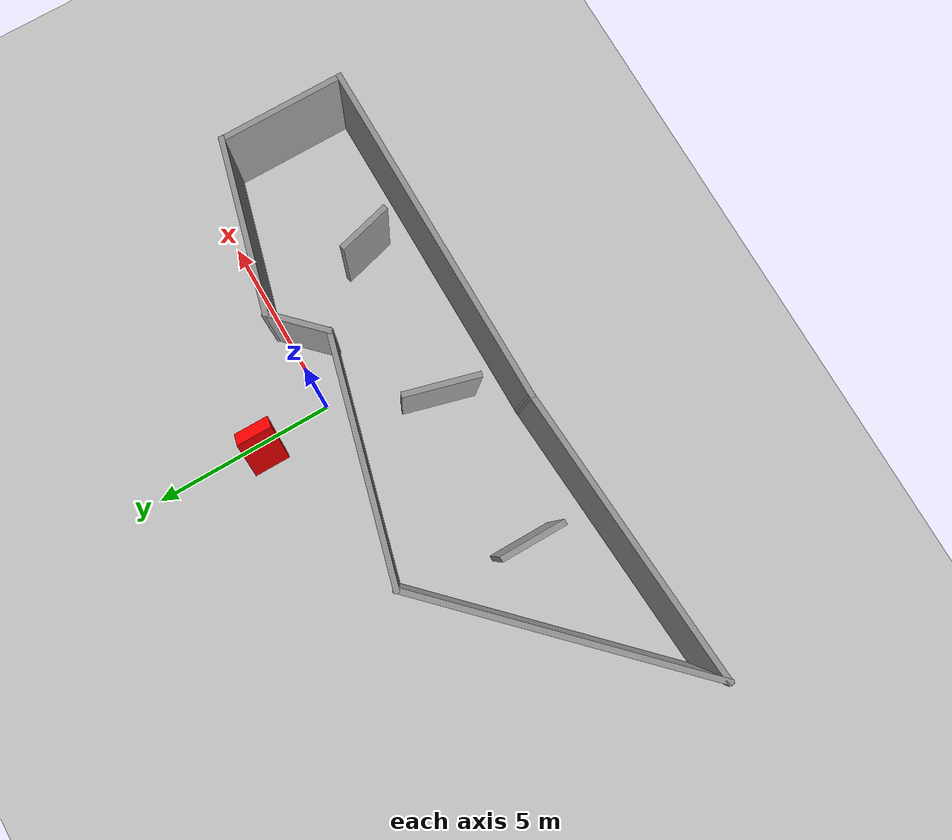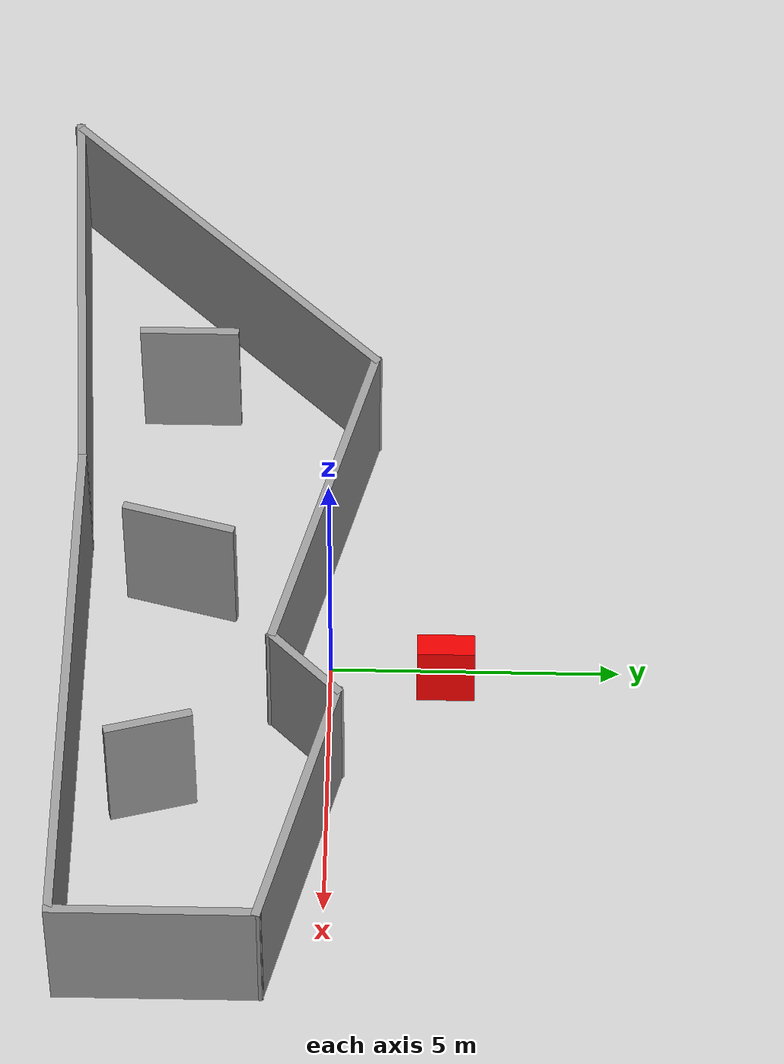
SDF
<?xml version="1.0" ?>
<sdf version="1.7">
  <world name="test_world">

    <!-- Raum als statisches SDF-Modell -->

    <!-- Ground Plane -->
    <include>
      <uri>model://ground_plane</uri>
    </include>

    <!-- Test-Box in der Mitte -->
    <model name="test_box">
      <pose>0 2 0 0 1 0</pose>
      <static>true</static>
      <link name="link">
        <visual name="visual">
          <geometry>
            <box><size>1 1 1</size></box>
          </geometry>
          <material>
            <ambient>1 0 0 1</ambient>
          </material>
        </visual>
      </link>
    </model>

    <!-- Labyrinth -->
    <model name="labyrinth">
    <pose>-1.91663 -2.0827 0 0 -0 0</pose>
    <link name="Wall_0">
      <collision name="Wall_0_Collision">
        <geometry>
          <box>
            <size>9.5 0.15 2.5</size>
          </box>
        </geometry>
        <pose>0 0 1.25 0 -0 0</pose>
      </collision>
      <visual name='Wall_0_Visual'>
        <pose>0 0 1.25 0 -0 0</pose>
        <geometry>
          <box>
            <size>9.5 0.15 2.5</size>
          </box>
        </geometry>
        <material>
          <script>
            <uri>file://media/materials/scripts/gazebo.material</uri>
            <name>Gazebo/Grey</name>
          </script>
          <ambient>1 1 1 1</ambient>
        </material>
        <meta>
          <layer>0</layer>
        </meta>
      </visual>
      <pose>3.96163 -2.2773 0 0 -0 0</pose>
    </link>
    <link name='Wall_1'>
      <collision name='Wall_1_Collision'>
        <geometry>
          <box>
            <size>3.5 0.15 2.5</size>
          </box>
        </geometry>
        <pose>0 0 1.25 0 -0 0</pose>
      </collision>
      <visual name='Wall_1_Visual'>
        <pose>0 0 1.25 0 -0 0</pose>
        <geometry>
          <box>
            <size>3.5 0.15 2.5</size>
          </box>
        </geometry>
        <material>
          <script>
            <uri>file://media/materials/scripts/gazebo.material</uri>
            <name>Gazebo/Grey</name>
          </script>
          <ambient>1 1 1 1</ambient>
        </material>
        <meta>
          <layer>0</layer>
        </meta>
      </visual>
      <pose>8.63663 -0.602304 0 0 -0 1.5708</pose>
    </link>
    <link name='Wall_10'>
      <collision name='Wall_10_Collision'>
        <geometry>
          <box>
            <size>1.5 0.15 2.5</size>
          </box>
        </geometry>
        <pose>0 0 1.25 0 -0 0</pose>
      </collision>
      <visual name='Wall_10_Visual'>
        <pose>0 0 1.25 0 -0 0</pose>
        <geometry>
          <box>
            <size>1.5 0.15 2.5</size>
          </box>
        </geometry>
        <material>
          <script>
            <uri>file://media/materials/scripts/gazebo.material</uri>
            <name>Gazebo/Grey</name>
          </script>
          <ambient>1 1 1 1</ambient>
        </material>
        <meta>
          <layer>0</layer>
        </meta>
      </visual>
      <pose>4.89322 -0.860973 0 0 -0 -1.309</pose>
    </link>
    <link name='Wall_12'>
      <collision name='Wall_12_Collision'>
        <geometry>
          <box>
            <size>2 0.15 2.5</size>
          </box>
        </geometry>
        <pose>0 0 1.25 0 -0 0</pose>
      </collision>
      <visual name='Wall_12_Visual'>
        <pose>0 0 1.25 0 -0 0</pose>
        <geometry>
          <box>
            <size>2 0.15 2.5</size>
          </box>
        </geometry>
        <material>
          <script>
            <uri>file://media/materials/scripts/gazebo.material</uri>
            <name>Gazebo/Grey</name>
          </script>
          <ambient>1 1 1 1</ambient>
        </material>
        <meta>
          <layer>0</layer>
        </meta>
      </visual>
      <pose>0.570034 -0.54732 0 0 -0 -1.8326</pose>
    </link>
    <link name='Wall_2'>
      <collision name='Wall_2_Collision'>
        <geometry>
          <box>
            <size>4.75 0.15 2.5</size>
          </box>
        </geometry>
        <pose>0 0 1.25 0 -0 0</pose>
      </collision>
      <visual name='Wall_2_Visual'>
        <pose>0 0 1.25 0 -0 0</pose>
        <geometry>
          <box>
            <size>4.75 0.15 2.5</size>
          </box>
        </geometry>
        <material>
          <script>
            <uri>file://media/materials/scripts/gazebo.material</uri>
            <name>Gazebo/Grey</name>
          </script>
          <ambient>1 1 1 1</ambient>
        </material>
        <meta>
          <layer>0</layer>
        </meta>
      </visual>
      <pose>6.415 1.66798 0 0 -0 2.87979</pose>
    </link>
    <link name='Wall_3'>
      <collision name='Wall_3_Collision'>
        <geometry>
          <box>
            <size>1.75 0.15 2.5</size>
          </box>
        </geometry>
        <pose>0 0 1.25 0 -0 0</pose>
      </collision>
      <visual name='Wall_3_Visual'>
        <pose>0 0 1.25 0 -0 0</pose>
        <geometry>
          <box>
            <size>1.75 0.15 2.5</size>
          </box>
        </geometry>
        <material>
          <script>
            <uri>file://media/materials/scripts/gazebo.material</uri>
            <name>Gazebo/Grey</name>
          </script>
          <ambient>1 1 1 1</ambient>
        </material>
        <meta>
          <layer>0</layer>
        </meta>
      </visual>
      <pose>3.62769 1.69758 0 0 -0 -2.35619</pose>
    </link>
    <link name='Wall_4'>
      <collision name='Wall_4_Collision'>
        <geometry>
          <box>
            <size>6.5 0.15 2.5</size>
          </box>
        </geometry>
        <pose>0 0 1.25 0 -0 0</pose>
      </collision>
      <visual name='Wall_4_Visual'>
        <pose>0 0 1.25 0 -0 0</pose>
        <geometry>
          <box>
            <size>6.5 0.15 2.5</size>
          </box>
        </geometry>
        <material>
          <script>
            <uri>file://media/materials/scripts/gazebo.material</uri>
            <name>Gazebo/Grey</name>
          </script>
          <ambient>1 1 1 1</ambient>
        </material>
        <meta>
          <layer>0</layer>
        </meta>
      </visual>
      <pose>-0.004815 1.95364 0 0 -0 2.87979</pose>
    </link>
    <link name='Wall_5'>
      <collision name='Wall_5_Collision'>
        <geometry>
          <box>
            <size>8 0.15 2.5</size>
          </box>
        </geometry>
        <pose>0 0 1.25 0 -0 0</pose>
      </collision>
      <visual name='Wall_5_Visual'>
        <pose>0 0 1.25 0 -0 0</pose>
        <geometry>
          <box>
            <size>8 0.15 2.5</size>
          </box>
        </geometry>
        <material>
          <script>
            <uri>file://media/materials/scripts/gazebo.material</uri>
            <name>Gazebo/Grey</name>
          </script>
          <ambient>1 1 1 1</ambient>
        </material>
        <meta>
          <layer>0</layer>
        </meta>
      </visual>
      <pose>-5.84702 -0 0 0 -0 -2.35619</pose>
    </link>
    <link name='Wall_6'>
      <collision name='Wall_6_Collision'>
        <geometry>
          <box>
            <size>8.07472 0.15 2.5</size>
          </box>
        </geometry>
        <pose>0 0 1.25 0 -0 0</pose>
      </collision>
      <visual name='Wall_6_Visual'>
        <pose>0 0 1.25 0 -0 0</pose>
        <geometry>
          <box>
            <size>8.07472 0.15 2.5</size>
          </box>
        </geometry>
        <material>
          <script>
            <uri>file://media/materials/scripts/gazebo.material</uri>
            <name>Gazebo/Grey</name>
          </script>
          <ambient>1 1 1 1</ambient>
        </material>
        <meta>
          <layer>0</layer>
        </meta>
      </visual>
      <pose>-4.66789 -2.52635 0 0 -0 0.062894</pose>
    </link>
    <link name='Wall_8'>
      <collision name='Wall_8_Collision'>
        <geometry>
          <box>
            <size>1.75 0.15 2.5</size>
          </box>
        </geometry>
        <pose>0 0 1.25 0 -0 0</pose>
      </collision>
      <visual name='Wall_8_Visual'>
        <pose>0 0 1.25 0 -0 0</pose>
        <geometry>
          <box>
            <size>1.75 0.15 2.5</size>
          </box>
        </geometry>
        <material>
          <script>
            <uri>file://media/materials/scripts/gazebo.material</uri>
            <name>Gazebo/Grey</name>
          </script>
          <ambient>1 1 1 1</ambient>
        </material>
        <meta>
          <layer>0</layer>
        </meta>
      </visual>
      <pose>-3.6779 -0.546361 0 0 -0 -1.5708</pose>
    </link>
    <static>1</static>
    </model>

    <!-- Standardplugins etc. -->
    <plugin name="gazebo_ros_init" filename="libgazebo_ros_init.so">
      <ros>
        <namespace>/</namespace>
      </ros>
    </plugin>

    <plugin name="gazebo_ros_factory" filename="libgazebo_ros_factory.so"/>
    <plugin name="gazebo_ros_clock" filename="libgazebo_ros_clock.so"/>
  </world>
</sdf>
